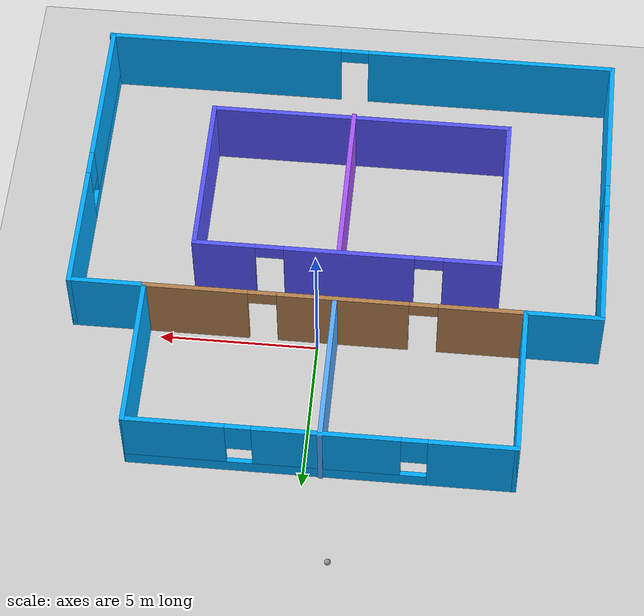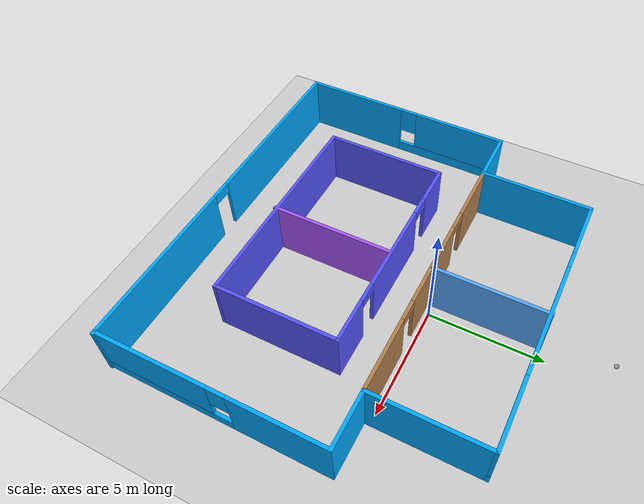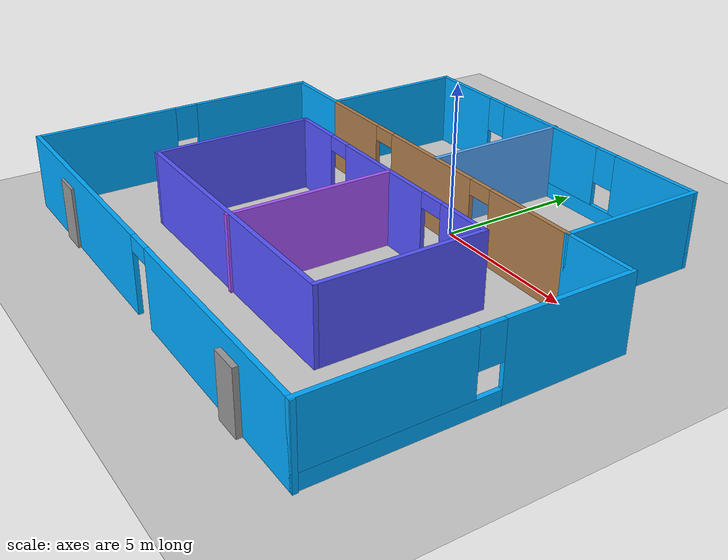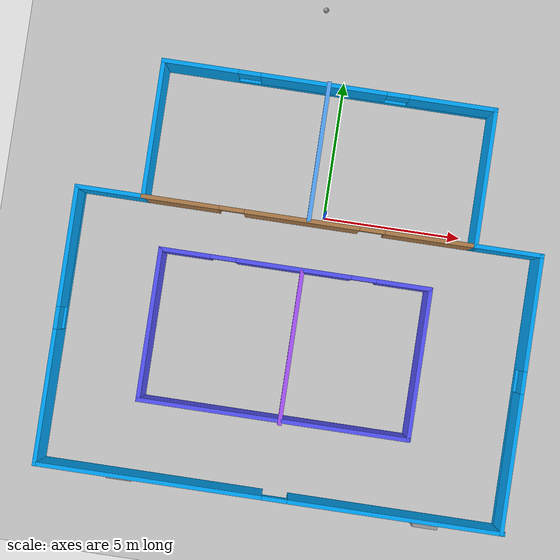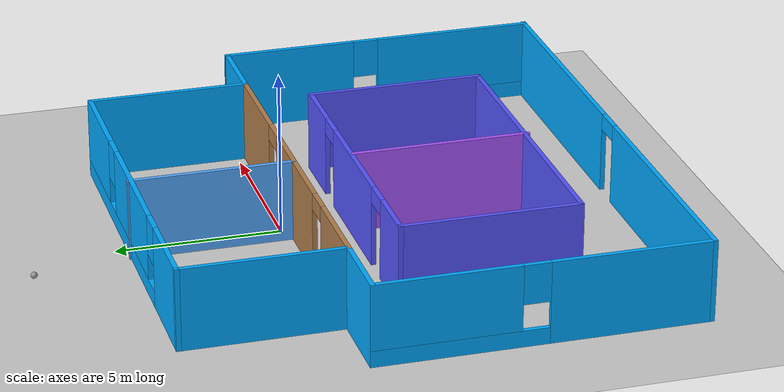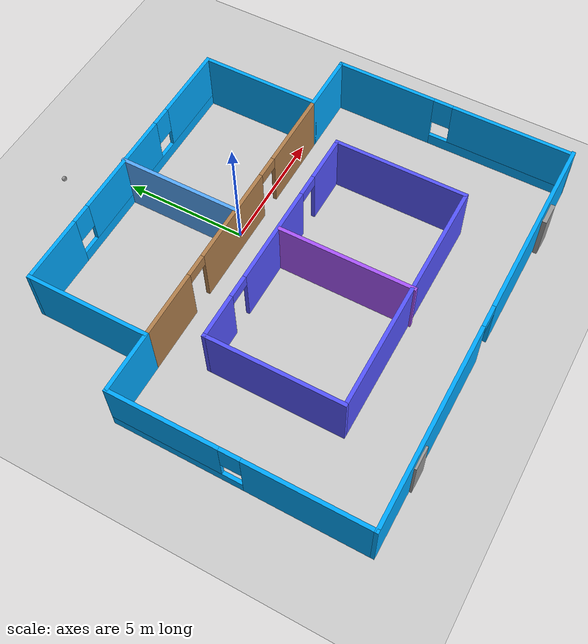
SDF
<sdf version="1.7">
 <world name="default">
  <plugin name="hello" filename="libhello.so"/>
  <light name="sun" type="directional">
   <pose>0 0 10 0 -0 0</pose>
   <diffuse>0.8 0.8 0.8 1</diffuse>
   <specular>0.2 0.2 0.2 1</specular>
   <attenuation>
    <range>1000</range>
    <constant>0.9</constant>
    <linear>0.01</linear>
    <quadratic>0.001</quadratic>
   </attenuation>
   <direction>-0.5 0.1 -0.9</direction>
   <spot><inner_angle>0</inner_angle><outer_angle>0</outer_angle><falloff>0</falloff></spot>
  </light>
  <model name="ground_plane">
   <static>1</static>
   <link name="link">
    <collision name="collision">
     <geometry><plane><normal>0 0 1</normal><size>100 100</size></plane></geometry>
     <surface><friction><ode><mu>100</mu><mu2>50</mu2></ode></friction></surface>
    </collision>
    <visual name="visual">
     <cast_shadows>0</cast_shadows>
     <geometry><plane><normal>0 0 1</normal><size>100 100</size></plane></geometry>
     <material>
      <script><uri>file://media/materials/scripts/gazebo.material</uri><name>Gazebo/Grey</name></script>
     </material>
    </visual>
   </link>
  </model>
  <gravity>0 0 -9.8</gravity>
  <magnetic_field>6e-06 2.3e-05 -4.2e-05</magnetic_field>
  <atmosphere type="adiabatic"/>
  <physics name="default_physics" default="0" type="ode">
   <max_step_size>0.001</max_step_size>
   <real_time_factor>1</real_time_factor>
   <real_time_update_rate>1000</real_time_update_rate>
  </physics>
  <scene><ambient>0.4 0.4 0.4 1</ambient><background>0.7 0.7 0.7 1</background><shadows>1</shadows></scene>
  <spherical_coordinates>
   <surface_model>EARTH_WGS84</surface_model>
   <latitude_deg>0</latitude_deg>
   <longitude_deg>0</longitude_deg>
   <elevation>0</elevation>
   <heading_deg>0</heading_deg>
  </spherical_coordinates>
  <model name="Building">
   <pose>-0.49175 -2.77321 0 0 -0 0</pose>
   <link name="Door_2">
    <collision name="Door_2_Collision">
     <geometry><box><size>0.9 0.17 2</size></box></geometry>
     <pose>0 0 1 0 -0 0</pose>
    </collision>
    <visual name="Door_2_Visual">
     <pose>0 0 1 0 -0 0</pose>
     <geometry><box><size>0.9 0.17 2</size></box></geometry>
     <material>
      <script><uri>file://media/materials/scripts/gazebo.material</uri><name>Gazebo/Grey</name></script>
     </material>
    </visual>
    <pose>-5.33502 -7.44959 0 0 -0 0</pose>
   </link>
   <link name="Door_4">
    <collision name="Door_4_Collision">
     <geometry><box><size>0.9 0.17 2</size></box></geometry>
     <pose>0 0 1 0 -0 0</pose>
    </collision>
    <visual name="Door_4_Visual">
     <pose>0 0 1 0 -0 0</pose>
     <geometry><box><size>0.9 0.17 2</size></box></geometry>
     <material>
      <script><uri>file://media/materials/scripts/gazebo.material</uri><name>Gazebo/Grey</name></script>
     </material>
    </visual>
    <pose>5.5981 -7.54263 0 0 -0 0</pose>
   </link>
   <link name="Wall_0">
    <pose>-8.2999 -2.44741 0 0 -0 1.57078</pose>
    <visual name="Wall_0_Visual_0">
     <pose>-2.57696 0 1.25 0 -0 0</pose>
     <geometry><box><size>4.84608 0.15 2.5</size></box></geometry>
     <material>
      <script><uri>file://media/materials/scripts/gazebo.material</uri><name>Gazebo/Grey</name></script>
      <ambient>0 0.666667 1 1</ambient>
     </material>
     <meta><layer>0</layer></meta>
    </visual>
    <collision name="Wall_0_Collision_0">
     <geometry><box><size>4.84608 0.15 2.5</size></box></geometry>
     <pose>-2.57696 0 1.25 0 -0 0</pose>
    </collision>
    <visual name="Wall_0_Visual_1">
     <pose>2.42304 0 0.25 0 -0 0</pose>
     <geometry><box><size>5.15392 0.15 0.5</size></box></geometry>
     <material>
      <script><uri>file://media/materials/scripts/gazebo.material</uri><name>Gazebo/Grey</name></script>
      <ambient>0 0.666667 1 1</ambient>
     </material>
     <meta><layer>0</layer></meta>
    </visual>
    <collision name="Wall_0_Collision_1">
     <geometry><box><size>5.15392 0.15 0.5</size></box></geometry>
     <pose>2.42304 0 0.25 0 -0 0</pose>
    </collision>
    <visual name="Wall_0_Visual_2">
     <pose>2.82304 0 1.5 0 -0 0</pose>
     <geometry><box><size>4.35392 0.15 2</size></box></geometry>
     <material>
      <script><uri>file://media/materials/scripts/gazebo.material</uri><name>Gazebo/Grey</name></script>
      <ambient>0 0.666667 1 1</ambient>
     </material>
     <meta><layer>0</layer></meta>
    </visual>
    <collision name="Wall_0_Collision_2">
     <geometry><box><size>4.35392 0.15 2</size></box></geometry>
     <pose>2.82304 0 1.5 0 -0 0</pose>
    </collision>
    <visual name="Wall_0_Visual_3">
     <pose>0.246081 0 1.9 0 -0 0</pose>
     <geometry><box><size>0.8 0.15 1.2</size></box></geometry>
     <material>
      <script><uri>file://media/materials/scripts/gazebo.material</uri><name>Gazebo/Grey</name></script>
      <ambient>0 0.666667 1 1</ambient>
     </material>
     <meta><layer>0</layer></meta>
    </visual>
    <collision name="Wall_0_Collision_3">
     <geometry><box><size>0.8 0.15 1.2</size></box></geometry>
     <pose>0.246081 0 1.9 0 -0 0</pose>
    </collision>
   </link>
   <link name="Wall_11">
    <collision name="Wall_11_Collision">
     <geometry><box><size>2.5 0.15 2.5</size></box></geometry>
     <pose>0 0 1.25 0 -0 0</pose>
    </collision>
    <visual name="Wall_11_Visual">
     <pose>0 0 1.25 0 -0 0</pose>
     <geometry><box><size>2.5 0.15 2.5</size></box></geometry>
     <material>
      <script><uri>file://media/materials/scripts/gazebo.material</uri><name>Gazebo/Grey</name></script>
      <ambient>0 0.666667 1 1</ambient>
     </material>
     <meta><layer>0</layer></meta>
    </visual>
    <pose>7.075 2.47738 0 0 -0 0</pose>
   </link>
   <link name="Wall_13">
    <pose>8.25 -2.44762 0 0 0 -1.5708</pose>
    <visual name="Wall_13_Visual_0">
     <pose>-2.90781 0 1.25 0 -0 0</pose>
     <geometry><box><size>4.18438 0.15 2.5</size></box></geometry>
     <material>
      <script><uri>file://media/materials/scripts/gazebo.material</uri><name>Gazebo/Grey</name></script>
      <ambient>0 0.666667 1 1</ambient>
     </material>
     <meta><layer>0</layer></meta>
    </visual>
    <collision name="Wall_13_Collision_0">
     <geometry><box><size>4.18438 0.15 2.5</size></box></geometry>
     <pose>-2.90781 0 1.25 0 -0 0</pose>
    </collision>
    <visual name="Wall_13_Visual_1">
     <pose>2.09219 0 0.25 0 -0 0</pose>
     <geometry><box><size>5.81562 0.15 0.5</size></box></geometry>
     <material>
      <script><uri>file://media/materials/scripts/gazebo.material</uri><name>Gazebo/Grey</name></script>
      <ambient>0 0.666667 1 1</ambient>
     </material>
     <meta><layer>0</layer></meta>
    </visual>
    <collision name="Wall_13_Collision_1">
     <geometry><box><size>5.81562 0.15 0.5</size></box></geometry>
     <pose>2.09219 0 0.25 0 -0 0</pose>
    </collision>
    <visual name="Wall_13_Visual_2">
     <pose>2.49219 0 1.5 0 -0 0</pose>
     <geometry><box><size>5.01562 0.15 2</size></box></geometry>
     <material>
      <script><uri>file://media/materials/scripts/gazebo.material</uri><name>Gazebo/Grey</name></script>
      <ambient>0 0.666667 1 1</ambient>
     </material>
     <meta><layer>0</layer></meta>
    </visual>
    <collision name="Wall_13_Collision_2">
     <geometry><box><size>5.01562 0.15 2</size></box></geometry>
     <pose>2.49219 0 1.5 0 -0 0</pose>
    </collision>
    <visual name="Wall_13_Visual_3">
     <pose>-0.415615 0 1.9 0 -0 0</pose>
     <geometry><box><size>0.8 0.15 1.2</size></box></geometry>
     <material>
      <script><uri>file://media/materials/scripts/gazebo.material</uri><name>Gazebo/Grey</name></script>
      <ambient>0 0.666667 1 1</ambient>
     </material>
     <meta><layer>0</layer></meta>
    </visual>
    <collision name="Wall_13_Collision_3">
     <geometry><box><size>0.8 0.15 1.2</size></box></geometry>
     <pose>-0.415615 0 1.9 0 -0 0</pose>
    </collision>
   </link>
   <link name="Wall_15">
    <pose>1e-06 -7.37262 0 0 -0 0</pose>
    <visual name="Wall_15_Visual_0">
     <pose>-4.31184 0 1.25 0 -0 0</pose>
     <geometry><box><size>8.12632 0.15 2.5</size></box></geometry>
     <material>
      <script><uri>file://media/materials/scripts/gazebo.material</uri><name>Gazebo/Grey</name></script>
      <ambient>0 0.666667 1 1</ambient>
     </material>
     <meta><layer>0</layer></meta>
    </visual>
    <collision name="Wall_15_Collision_0">
     <geometry><box><size>8.12632 0.15 2.5</size></box></geometry>
     <pose>-4.31184 0 1.25 0 -0 0</pose>
    </collision>
    <visual name="Wall_15_Visual_1">
     <pose>4.51316 0 1.25 0 -0 0</pose>
     <geometry><box><size>7.72368 0.15 2.5</size></box></geometry>
     <material>
      <script><uri>file://media/materials/scripts/gazebo.material</uri><name>Gazebo/Grey</name></script>
      <ambient>0 0.666667 1 1</ambient>
     </material>
     <meta><layer>0</layer></meta>
    </visual>
    <collision name="Wall_15_Collision_1">
     <geometry><box><size>7.72368 0.15 2.5</size></box></geometry>
     <pose>4.51316 0 1.25 0 -0 0</pose>
    </collision>
    <visual name="Wall_15_Visual_2">
     <pose>0.201321 0 2.25 0 -0 0</pose>
     <geometry><box><size>0.9 0.15 0.5</size></box></geometry>
     <material>
      <script><uri>file://media/materials/scripts/gazebo.material</uri><name>Gazebo/Grey</name></script>
      <ambient>0 0.666667 1 1</ambient>
     </material>
     <meta><layer>0</layer></meta>
    </visual>
    <collision name="Wall_15_Collision_2">
     <geometry><box><size>0.9 0.15 0.5</size></box></geometry>
     <pose>0.201321 0 2.25 0 -0 0</pose>
    </collision>
   </link>
   <link name="Wall_17">
    <collision name="Wall_17_Collision">
     <geometry><box><size>5.5 0.15 2.5</size></box></geometry>
     <pose>0 0 1.25 0 -0 0</pose>
    </collision>
    <visual name="Wall_17_Visual">
     <pose>0 0 1.25 0 -0 0</pose>
     <geometry><box><size>5.5 0.15 2.5</size></box></geometry>
     <material>
      <script><uri>file://media/materials/scripts/gazebo.material</uri><name>Gazebo/Grey</name></script>
      <ambient>0.333333 0.333333 1 1</ambient>
     </material>
     <meta><layer>0</layer></meta>
    </visual>
    <pose>-5.05113 -1.93977 0 0 0 -1.5708</pose>
   </link>
   <link name="Wall_19">
    <pose>-0.251134 0.735233 0 0 -0 0</pose>
    <visual name="Wall_19_Visual_0">
     <pose>-3.95586 0 1.25 0 -0 0</pose>
     <geometry><box><size>1.83829 0.15 2.5</size></box></geometry>
     <material>
      <script><uri>file://media/materials/scripts/gazebo.material</uri><name>Gazebo/Grey</name></script>
      <ambient>0.333333 0.333333 1 1</ambient>
     </material>
     <meta><layer>0</layer></meta>
    </visual>
    <collision name="Wall_19_Collision_0">
     <geometry><box><size>1.83829 0.15 2.5</size></box></geometry>
     <pose>-3.95586 0 1.25 0 -0 0</pose>
    </collision>
    <visual name="Wall_19_Visual_1">
     <pose>-0.076888 0 1.25 0 -0 0</pose>
     <geometry><box><size>4.11965 0.15 2.5</size></box></geometry>
     <material>
      <script><uri>file://media/materials/scripts/gazebo.material</uri><name>Gazebo/Grey</name></script>
      <ambient>0.333333 0.333333 1 1</ambient>
     </material>
     <meta><layer>0</layer></meta>
    </visual>
    <collision name="Wall_19_Collision_1">
     <geometry><box><size>4.11965 0.15 2.5</size></box></geometry>
     <pose>-0.076888 0 1.25 0 -0 0</pose>
    </collision>
    <visual name="Wall_19_Visual_2">
     <pose>3.87897 0 1.25 0 -0 0</pose>
     <geometry><box><size>1.99206 0.15 2.5</size></box></geometry>
     <material>
      <script><uri>file://media/materials/scripts/gazebo.material</uri><name>Gazebo/Grey</name></script>
      <ambient>0.333333 0.333333 1 1</ambient>
     </material>
     <meta><layer>0</layer></meta>
    </visual>
    <collision name="Wall_19_Collision_2">
     <geometry><box><size>1.99206 0.15 2.5</size></box></geometry>
     <pose>3.87897 0 1.25 0 -0 0</pose>
    </collision>
    <visual name="Wall_19_Visual_3">
     <pose>-2.58671 0 2.25 0 -0 0</pose>
     <geometry><box><size>0.9 0.15 0.5</size></box></geometry>
     <material>
      <script><uri>file://media/materials/scripts/gazebo.material</uri><name>Gazebo/Grey</name></script>
      <ambient>0.333333 0.333333 1 1</ambient>
     </material>
     <meta><layer>0</layer></meta>
    </visual>
    <collision name="Wall_19_Collision_3">
     <geometry><box><size>0.9 0.15 0.5</size></box></geometry>
     <pose>-2.58671 0 2.25 0 -0 0</pose>
    </collision>
    <visual name="Wall_19_Visual_4">
     <pose>2.43294 0 2.25 0 -0 0</pose>
     <geometry><box><size>0.9 0.15 0.5</size></box></geometry>
     <material>
      <script><uri>file://media/materials/scripts/gazebo.material</uri><name>Gazebo/Grey</name></script>
      <ambient>0.333333 0.333333 1 1</ambient>
     </material>
     <meta><layer>0</layer></meta>
    </visual>
    <collision name="Wall_19_Collision_4">
     <geometry><box><size>0.9 0.15 0.5</size></box></geometry>
     <pose>2.43294 0 2.25 0 -0 0</pose>
    </collision>
   </link>
   <link name="Wall_2">
    <collision name="Wall_2_Collision">
     <geometry><box><size>2.5 0.15 2.5</size></box></geometry>
     <pose>0 0 1.25 0 -0 0</pose>
    </collision>
    <visual name="Wall_2_Visual">
     <pose>0 0 1.25 0 -0 0</pose>
     <geometry><box><size>2.5 0.15 2.5</size></box></geometry>
     <material>
      <script><uri>file://media/materials/scripts/gazebo.material</uri><name>Gazebo/Grey</name></script>
      <ambient>0 0.666667 1 1</ambient>
     </material>
     <meta><layer>0</layer></meta>
    </visual>
    <pose>-7.12479 2.47779 0 0 -0 0</pose>
   </link>
   <link name="Wall_20">
    <collision name="Wall_20_Collision">
     <geometry><box><size>5.5 0.15 2.5</size></box></geometry>
     <pose>0 0 1.25 0 -0 0</pose>
    </collision>
    <visual name="Wall_20_Visual">
     <pose>0 0 1.25 0 -0 0</pose>
     <geometry><box><size>5.5 0.15 2.5</size></box></geometry>
     <material>
      <script><uri>file://media/materials/scripts/gazebo.material</uri><name>Gazebo/Grey</name></script>
      <ambient>0.333333 0.333333 1 1</ambient>
     </material>
     <meta><layer>0</layer></meta>
    </visual>
    <pose>4.54887 -1.93977 0 0 0 -1.5708</pose>
   </link>
   <link name="Wall_21">
    <collision name="Wall_21_Collision">
     <geometry><box><size>9.75 0.15 2.5</size></box></geometry>
     <pose>0 0 1.25 0 -0 0</pose>
    </collision>
    <visual name="Wall_21_Visual">
     <pose>0 0 1.25 0 -0 0</pose>
     <geometry><box><size>9.75 0.15 2.5</size></box></geometry>
     <material>
      <script><uri>file://media/materials/scripts/gazebo.material</uri><name>Gazebo/Grey</name></script>
      <ambient>0.333333 0.333333 1 1</ambient>
     </material>
     <meta><layer>0</layer></meta>
    </visual>
    <pose>-0.251134 -4.61477 0 0 -0 3.14159</pose>
   </link>
   <link name="Wall_23">
    <pose>-0.024896 2.47759 0 0 0 -3.5e-05</pose>
    <visual name="Wall_23_Visual_0">
     <pose>-4.61149 0 1.25 0 -0 0</pose>
     <geometry><box><size>2.77681 0.15 2.5</size></box></geometry>
     <material>
      <script><uri>file://media/materials/scripts/gazebo.material</uri><name>Gazebo/Wood</name></script>
      <ambient>1 1 1 1</ambient>
     </material>
     <meta><layer>0</layer></meta>
    </visual>
    <collision name="Wall_23_Collision_0">
     <geometry><box><size>2.77681 0.15 2.5</size></box></geometry>
     <pose>-4.61149 0 1.25 0 -0 0</pose>
    </collision>
    <visual name="Wall_23_Visual_1">
     <pose>-0.264836 0 1.25 0 -0 0</pose>
     <geometry><box><size>4.11649 0.15 2.5</size></box></geometry>
     <material>
      <script><uri>file://media/materials/scripts/gazebo.material</uri><name>Gazebo/Wood</name></script>
      <ambient>1 1 1 1</ambient>
     </material>
     <meta><layer>0</layer></meta>
    </visual>
    <collision name="Wall_23_Collision_1">
     <geometry><box><size>4.11649 0.15 2.5</size></box></geometry>
     <pose>-0.264836 0 1.25 0 -0 0</pose>
    </collision>
    <visual name="Wall_23_Visual_2">
     <pose>4.34665 0 1.25 0 -0 0</pose>
     <geometry><box><size>3.30648 0.15 2.5</size></box></geometry>
     <material>
      <script><uri>file://media/materials/scripts/gazebo.material</uri><name>Gazebo/Wood</name></script>
      <ambient>1 1 1 1</ambient>
     </material>
     <meta><layer>0</layer></meta>
    </visual>
    <collision name="Wall_23_Collision_2">
     <geometry><box><size>3.30648 0.15 2.5</size></box></geometry>
     <pose>4.34665 0 1.25 0 -0 0</pose>
    </collision>
    <visual name="Wall_23_Visual_3">
     <pose>-2.77308 0 2.25 0 -0 0</pose>
     <geometry><box><size>0.9 0.15 0.5</size></box></geometry>
     <material>
      <script><uri>file://media/materials/scripts/gazebo.material</uri><name>Gazebo/Wood</name></script>
      <ambient>1 1 1 1</ambient>
     </material>
     <meta><layer>0</layer></meta>
    </visual>
    <collision name="Wall_23_Collision_3">
     <geometry><box><size>0.9 0.15 0.5</size></box></geometry>
     <pose>-2.77308 0 2.25 0 -0 0</pose>
    </collision>
    <visual name="Wall_23_Visual_4">
     <pose>2.24341 0 2.25 0 -0 0</pose>
     <geometry><box><size>0.9 0.15 0.5</size></box></geometry>
     <material>
      <script><uri>file://media/materials/scripts/gazebo.material</uri><name>Gazebo/Wood</name></script>
      <ambient>1 1 1 1</ambient>
     </material>
     <meta><layer>0</layer></meta>
    </visual>
    <collision name="Wall_23_Collision_4">
     <geometry><box><size>0.9 0.15 0.5</size></box></geometry>
     <pose>2.24341 0 2.25 0 -0 0</pose>
    </collision>
   </link>
   <link name="Wall_25">
    <collision name="Wall_25_Collision">
     <geometry><box><size>5 0.15 2.5</size></box></geometry>
     <pose>0 0 1.25 0 -0 0</pose>
    </collision>
    <visual name="Wall_25_Visual">
     <pose>0 0 1.25 0 -0 0</pose>
     <geometry><box><size>5 0.15 2.5</size></box></geometry>
     <material>
      <script><uri>file://media/materials/scripts/gazebo.material</uri><name>Gazebo/Grey</name></script>
      <ambient>0.333333 0.666667 1 1</ambient>
     </material>
     <meta><layer>0</layer></meta>
    </visual>
    <pose>-0.046998 4.94762 0 0 0 -1.5708</pose>
   </link>
   <link name="Wall_27">
    <collision name="Wall_27_Collision">
     <geometry><box><size>5.5 0.15 2.5</size></box></geometry>
     <pose>0 0 1.25 0 -0 0</pose>
    </collision>
    <visual name="Wall_27_Visual">
     <pose>0 0 1.25 0 -0 0</pose>
     <geometry><box><size>5.5 0.15 2.5</size></box></geometry>
     <material>
      <script><uri>file://media/materials/scripts/gazebo.material</uri><name>Gazebo/Grey</name></script>
      <ambient>0.666667 0.333333 1 1</ambient>
     </material>
     <meta><layer>0</layer></meta>
    </visual>
    <pose>-0.006543 -2.01801 0 0 0 -1.5708</pose>
   </link>
   <link name="Wall_4">
    <collision name="Wall_4_Collision">
     <geometry><box><size>5 0.15 2.5</size></box></geometry>
     <pose>0 0 1.25 0 -0 0</pose>
    </collision>
    <visual name="Wall_4_Visual">
     <pose>0 0 1.25 0 -0 0</pose>
     <geometry><box><size>5 0.15 2.5</size></box></geometry>
     <material>
      <script><uri>file://media/materials/scripts/gazebo.material</uri><name>Gazebo/Grey</name></script>
      <ambient>0 0.666667 1 1</ambient>
     </material>
     <meta><layer>0</layer></meta>
    </visual>
    <pose>-5.94979 4.9028 0 0 -0 1.5708</pose>
   </link>
   <link name="Wall_6">
    <pose>-0.024896 7.32759 0 0 0 -3.5e-05</pose>
    <visual name="Wall_6_Visual_0">
     <pose>-4.62699 0 1.25 0 -0 0</pose>
     <geometry><box><size>2.74601 0.15 2.5</size></box></geometry>
     <material>
      <script><uri>file://media/materials/scripts/gazebo.material</uri><name>Gazebo/Grey</name></script>
      <ambient>0 0.666667 1 1</ambient>
     </material>
     <meta><layer>0</layer></meta>
    </visual>
    <collision name="Wall_6_Collision_0">
     <geometry><box><size>2.74601 0.15 2.5</size></box></geometry>
     <pose>-4.62699 0 1.25 0 -0 0</pose>
    </collision>
    <visual name="Wall_6_Visual_1">
     <pose>1.37301 0 0.25 0 -0 0</pose>
     <geometry><box><size>9.25399 0.15 0.5</size></box></geometry>
     <material>
      <script><uri>file://media/materials/scripts/gazebo.material</uri><name>Gazebo/Grey</name></script>
      <ambient>0 0.666667 1 1</ambient>
     </material>
     <meta><layer>0</layer></meta>
    </visual>
    <collision name="Wall_6_Collision_1">
     <geometry><box><size>9.25399 0.15 0.5</size></box></geometry>
     <pose>1.37301 0 0.25 0 -0 0</pose>
    </collision>
    <visual name="Wall_6_Visual_2">
     <pose>-0.204149 0 1.5 0 -0 0</pose>
     <geometry><box><size>4.49968 0.15 2</size></box></geometry>
     <material>
      <script><uri>file://media/materials/scripts/gazebo.material</uri><name>Gazebo/Grey</name></script>
      <ambient>0 0.666667 1 1</ambient>
     </material>
     <meta><layer>0</layer></meta>
    </visual>
    <collision name="Wall_6_Collision_2">
     <geometry><box><size>4.49968 0.15 2</size></box></geometry>
     <pose>-0.204149 0 1.5 0 -0 0</pose>
    </collision>
    <visual name="Wall_6_Visual_3">
     <pose>4.42284 0 1.5 0 -0 0</pose>
     <geometry><box><size>3.15431 0.15 2</size></box></geometry>
     <material>
      <script><uri>file://media/materials/scripts/gazebo.material</uri><name>Gazebo/Grey</name></script>
      <ambient>0 0.666667 1 1</ambient>
     </material>
     <meta><layer>0</layer></meta>
    </visual>
    <collision name="Wall_6_Collision_3">
     <geometry><box><size>3.15431 0.15 2</size></box></geometry>
     <pose>4.42284 0 1.5 0 -0 0</pose>
    </collision>
    <visual name="Wall_6_Visual_4">
     <pose>-2.85399 0 1.9 0 -0 0</pose>
     <geometry><box><size>0.8 0.15 1.2</size></box></geometry>
     <material>
      <script><uri>file://media/materials/scripts/gazebo.material</uri><name>Gazebo/Grey</name></script>
      <ambient>0 0.666667 1 1</ambient>
     </material>
     <meta><layer>0</layer></meta>
    </visual>
    <collision name="Wall_6_Collision_4">
     <geometry><box><size>0.8 0.15 1.2</size></box></geometry>
     <pose>-2.85399 0 1.9 0 -0 0</pose>
    </collision>
    <visual name="Wall_6_Visual_5">
     <pose>2.44569 0 1.9 0 -0 0</pose>
     <geometry><box><size>0.8 0.15 1.2</size></box></geometry>
     <material>
      <script><uri>file://media/materials/scripts/gazebo.material</uri><name>Gazebo/Grey</name></script>
      <ambient>0 0.666667 1 1</ambient>
     </material>
     <meta><layer>0</layer></meta>
    </visual>
    <collision name="Wall_6_Collision_5">
     <geometry><box><size>0.8 0.15 1.2</size></box></geometry>
     <pose>2.44569 0 1.9 0 -0 0</pose>
    </collision>
   </link>
   <link name="Wall_9">
    <collision name="Wall_9_Collision">
     <geometry><box><size>5 0.15 2.5</size></box></geometry>
     <pose>0 0 1.25 0 -0 0</pose>
    </collision>
    <visual name="Wall_9_Visual">
     <pose>0 0 1.25 0 -0 0</pose>
     <geometry><box><size>5 0.15 2.5</size></box></geometry>
     <material>
      <script><uri>file://media/materials/scripts/gazebo.material</uri><name>Gazebo/Grey</name></script>
      <ambient>0 0.666667 1 1</ambient>
     </material>
     <meta><layer>0</layer></meta>
    </visual>
    <pose>5.9 4.90238 0 0 0 -1.5708</pose>
   </link>
   <static>1</static>
  </model>
  <model name="ball">
   <link name="link">
    <inertial>
     <mass>1</mass>
     <inertia><ixx>0.1</ixx><ixy>0</ixy><ixz>0</ixz><iyy>0.1</iyy><iyz>0</iyz><izz>0.1</izz></inertia>
    </inertial>
    <visual name="visual">
     <geometry><sphere><radius>0.1</radius></sphere></geometry>
     <material>
      <script><name>Gazebo/Grey</name><uri>file://media/materials/scripts/gazebo.material</uri></script>
      <shader type="pixel"><normal_map>__default__</normal_map></shader>
      <ambient>1 1 1 1</ambient>
      <diffuse>1 1 1 1</diffuse>
      <specular>1 1 1 1</specular>
      <emissive>1 1 1 1</emissive>
     </material>
    </visual>
    <collision name="collision">
     <geometry><sphere><radius>0.1</radius></sphere></geometry>
     <surface>
      <friction>
       <ode><mu>1</mu><mu2>1</mu2><fdir1>0 0 0</fdir1><slip1>0</slip1><slip2>0</slip2></ode>
       <torsional>
        <coefficient>1</coefficient>
        <patch_radius>0</patch_radius>
        <surface_radius>0</surface_radius>
        <use_patch_radius>1</use_patch_radius>
        <ode><slip>0</slip></ode>
       </torsional>
      </friction>
      <bounce><restitution_coefficient>0</restitution_coefficient><threshold>1e+06</threshold></bounce>
      <contact>
       <collide_without_contact>0</collide_without_contact>
       <collide_without_contact_bitmask>1</collide_without_contact_bitmask>
       <collide_bitmask>1</collide_bitmask>
       <ode>
        <soft_cfm>0</soft_cfm>
        <soft_erp>0.2</soft_erp>
        <kp>1e+13</kp>
        <kd>1</kd>
        <max_vel>0.01</max_vel>
        <min_depth>0</min_depth>
       </ode>
       <bullet>
        <split_impulse>1</split_impulse>
        <split_impulse_penetration_threshold>-0.01</split_impulse_penetration_threshold>
        <soft_cfm>0</soft_cfm>
        <soft_erp>0.2</soft_erp>
        <kp>1e+13</kp>
        <kd>1</kd>
       </bullet>
      </contact>
     </surface>
    </collision>
   </link>
   <static>0</static>
   <pose>-1.03853 7.56812 0.1 0 -0 0</pose>
  </model>
 </world>
</sdf>
